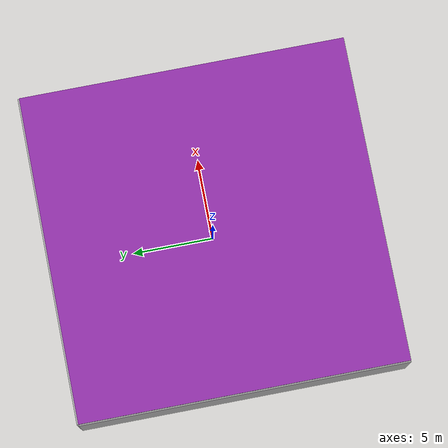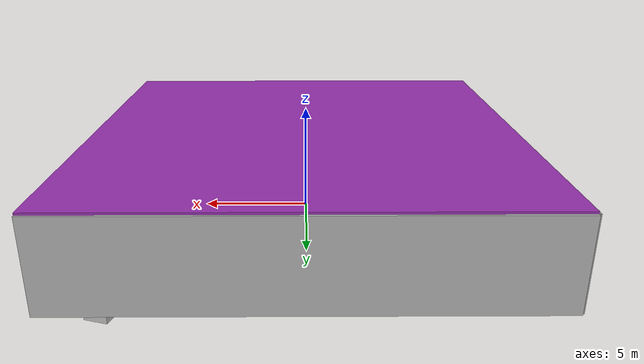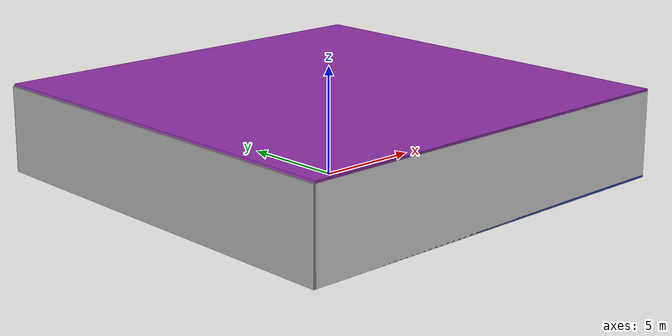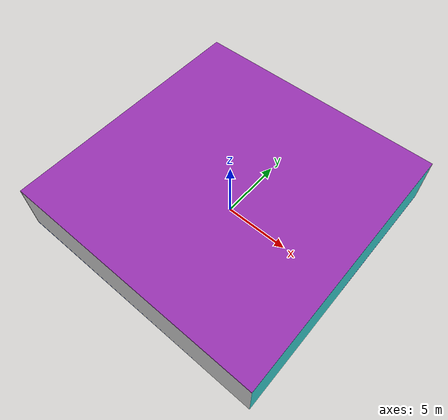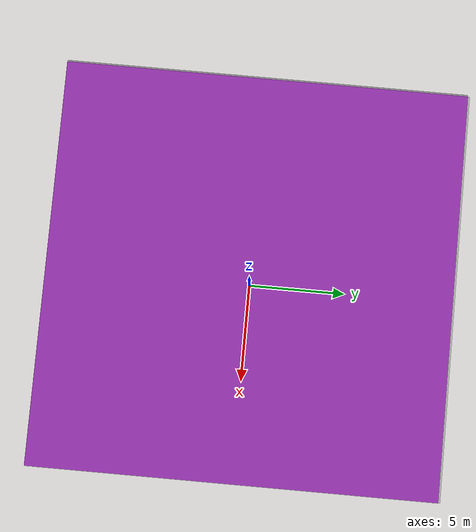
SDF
<sdf version="1.4">
 <world name="default">
  <physics type="ode">
   <max_step_size>0.001</max_step_size>
   <real_time_factor>1</real_time_factor>
   <real_time_update_rate>1000</real_time_update_rate>
   <gravity>0 0 -9.8</gravity>
  </physics>
  <scene><ambient>0.4 0.4 0.4 1</ambient><background>0.7 0.7 0.7 1</background><shadows>1</shadows></scene>
  <model name="Surrounding">
   <static>1</static>
   <link name="Ceiling">
    <collision name="Ceiling_Collision"><geometry><box><size>20 20 0.1</size></box></geometry></collision>
    <visual name="Ceiling_Visual">
     <geometry><box><size>20 20 0.1</size></box></geometry>
     <material>
      <script><uri>file://media/materials/scripts/gazebo.material</uri><name>Gazebo/Purple</name></script>
     </material>
    </visual>
    <pose>0 0 4.05 0 0 0</pose>
   </link>
   <link name="Wall_South">
    <collision name="Wall_South_Collision">
     <geometry><box><size>20 0 4</size></box></geometry>
     <pose>0 0 2 0 -0 0</pose>
    </collision>
    <visual name="Wall_South_Visual">
     <pose>0 0 2 0 -0 0</pose>
     <geometry><box><size>20 0 4</size></box></geometry>
     <material>
      <script><uri>file://media/materials/scripts/gazebo.material</uri><name>Gazebo/WhiteGlow</name></script>
     </material>
    </visual>
    <velocity_decay><linear>0</linear><angular>0</angular></velocity_decay>
    <pose>0 -10 0 0 -0 0</pose>
   </link>
   <link name="Wall_East">
    <collision name="Wall_21_Collision">
     <geometry><box><size>20 0 4</size></box></geometry>
     <pose>0 0 2 0 -0 0</pose>
    </collision>
    <visual name="Wall_21_Visual">
     <pose>0 0 2 0 -0 0</pose>
     <geometry><box><size>20 0 4</size></box></geometry>
     <material>
      <script><uri>file://media/materials/scripts/gazebo.material</uri><name>Gazebo/Turquoise</name></script>
     </material>
    </visual>
    <velocity_decay><linear>0</linear><angular>0</angular></velocity_decay>
    <pose>10 0 0 0 -0 1.5708</pose>
   </link>
   <link name="Wall_North">
    <collision name="Wall_22_Collision">
     <geometry><box><size>20 0.2 4</size></box></geometry>
     <pose>0 0 2 0 -0 0</pose>
    </collision>
    <visual name="Wall_22_Visual">
     <pose>0 0 2 0 -0 0</pose>
     <geometry><box><size>20 0.2 4</size></box></geometry>
     <material>
      <script><uri>file://media/materials/scripts/gazebo.material</uri><name>Gazebo/PioneerBody</name></script>
     </material>
    </visual>
    <velocity_decay><linear>0</linear><angular>0</angular></velocity_decay>
    <pose>0 10 0 0 -0 0</pose>
   </link>
   <link name="Wall_West">
    <collision name="Wall_23_Collision">
     <geometry><box><size>20 0.2 4</size></box></geometry>
     <pose>0 0 2 0 -0 0</pose>
    </collision>
    <visual name="Wall_23_Visual">
     <pose>0 0 2 0 -0 0</pose>
     <geometry><box><size>20 0.2 4</size></box></geometry>
     <material>
      <script><uri>file://media/materials/scripts/gazebo.material</uri><name>Gazebo/Grey</name></script>
     </material>
    </visual>
    <velocity_decay><linear>0</linear><angular>0</angular></velocity_decay>
    <pose>-10 0 0 0 0 -1.5708</pose>
   </link>
   <link name="Ground_link">
    <collision name="collision">
     <pose>0 0 .05 0 -0 0</pose>
     <geometry><box><size>20 20 0.1</size></box></geometry>
    </collision>
    <visual name="visual">
     <pose>0 0 .05 0 -0 0</pose>
     <geometry><box><size>20 20 0.1</size></box></geometry>
     <material>
      <script><uri>file://media/materials/scripts/gazebo.material</uri><name>Gazebo/BlueLaser</name></script>
     </material>
    </visual>
   </link>
   <static>1</static>
  </model>
  <spherical_coordinates>
   <surface_model>EARTH_WGS84</surface_model>
   <latitude_deg>0</latitude_deg>
   <longitude_deg>0</longitude_deg>
   <elevation>0</elevation>
   <heading_deg>0</heading_deg>
  </spherical_coordinates>
  <light name="lightball_0" type="diffuse">
   <diffuse>0.8 0.8 0.8 1</diffuse>
   <specular>0.2 0.2 0.2 1</specular>
   <attenuation>
    <range>100</range>
    <constant>0.7</constant>
    <linear>0.01</linear>
    <quadratic>0.001</quadratic>
   </attenuation>
   <direction>-0.5 0.1 -0.9</direction>
   <pose>-2.77243229301 -1.02579247995 0.975744923953 0 0 0</pose>
  </light>
  <light name="lightball_1" type="diffuse">
   <diffuse>0.8 0.8 0.8 1</diffuse>
   <specular>0.2 0.2 0.2 1</specular>
   <attenuation>
    <range>100</range>
    <constant>0.7</constant>
    <linear>0.01</linear>
    <quadratic>0.001</quadratic>
   </attenuation>
   <direction>-0.5 0.1 -0.9</direction>
   <pose>-9.69530013108 5.09019721103 2.01049826828 0 0 0</pose>
  </light>
  <light name="lightball_2" type="diffuse">
   <diffuse>0.8 0.8 0.8 1</diffuse>
   <specular>0.2 0.2 0.2 1</specular>
   <attenuation>
    <range>100</range>
    <constant>0.7</constant>
    <linear>0.01</linear>
    <quadratic>0.001</quadratic>
   </attenuation>
   <direction>-0.5 0.1 -0.9</direction>
   <pose>-2.62912378633 -5.13408868459 1.6506883271 0 0 0</pose>
  </light>
  <light name="lightball_3" type="diffuse">
   <diffuse>0.8 0.8 0.8 1</diffuse>
   <specular>0.2 0.2 0.2 1</specular>
   <attenuation>
    <range>100</range>
    <constant>0.7</constant>
    <linear>0.01</linear>
    <quadratic>0.001</quadratic>
   </attenuation>
   <direction>-0.5 0.1 -0.9</direction>
   <pose>-5.50340451144 0.151358975089 1.5090090312 0 0 0</pose>
  </light>
  <light name="lightball_4" type="diffuse">
   <diffuse>0.8 0.8 0.8 1</diffuse>
   <specular>0.2 0.2 0.2 1</specular>
   <attenuation>
    <range>100</range>
    <constant>0.7</constant>
    <linear>0.01</linear>
    <quadratic>0.001</quadratic>
   </attenuation>
   <direction>-0.5 0.1 -0.9</direction>
   <pose>0.0820852472815 0.256658726338 1.06807592629 0 0 0</pose>
  </light>
  <light name="lightball_5" type="diffuse">
   <diffuse>0.8 0.8 0.8 1</diffuse>
   <specular>0.2 0.2 0.2 1</specular>
   <attenuation>
    <range>100</range>
    <constant>0.7</constant>
    <linear>0.01</linear>
    <quadratic>0.001</quadratic>
   </attenuation>
   <direction>-0.5 0.1 -0.9</direction>
   <pose>7.743191252 -7.5688818099 1.31219526508 0 0 0</pose>
  </light>
  <light name="lightball_6" type="diffuse">
   <diffuse>0.8 0.8 0.8 1</diffuse>
   <specular>0.2 0.2 0.2 1</specular>
   <attenuation>
    <range>100</range>
    <constant>0.7</constant>
    <linear>0.01</linear>
    <quadratic>0.001</quadratic>
   </attenuation>
   <direction>-0.5 0.1 -0.9</direction>
   <pose>-0.337585647547 8.70883707714 3.8138280572 0 0 0</pose>
  </light>
  <light name="lightball_7" type="diffuse">
   <diffuse>0.8 0.8 0.8 1</diffuse>
   <specular>0.2 0.2 0.2 1</specular>
   <attenuation>
    <range>100</range>
    <constant>0.7</constant>
    <linear>0.01</linear>
    <quadratic>0.001</quadratic>
   </attenuation>
   <direction>-0.5 0.1 -0.9</direction>
   <pose>-0.516252214235 6.42136020182 0.689172446269 0 0 0</pose>
  </light>
  <include>
   <uri>model://textured_shapes</uri>
   <pose>-4.24850526718 1.10101482108 0 0 0 3.05719094673</pose>
  </include>
  <include><uri>model://cabinet</uri><pose>2.06529737157 -2.23367799588 0 0 0 0.812129334015</pose></include>
  <include>
   <uri>model://textured_shapes</uri>
   <pose>7.249433892 7.73848272496 0 0 0 2.84236322577</pose>
  </include>
 </world>
</sdf>

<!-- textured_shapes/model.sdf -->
<sdf version="1.6">
  <model name="textured_shapes">
    <pose>0 0 0.5 0 0 0</pose>
    <link name="box">
      <pose>0 -1.5 0 0 0 0</pose>
      <collision name="collision">
        <geometry>
          <box>
            <size>1 1 1</size>
          </box>
        </geometry>
      </collision>
      <visual name="visual">
        <geometry>
          <box>
            <size>1 1 1</size>
          </box>
        </geometry>
        <material>
          <script>
            <uri>model://../model_source/models/textured_shapes/materials/scripts</uri>
            <uri>model://../model_source/models/textured_shapes/materials/textures</uri>
            <name>TexturedShape/Squares</name>
          </script>
        </material>
      </visual>
    </link>
    <link name="sphere">
      <collision name="collision">
        <geometry>
          <sphere>
            <radius>0.5</radius>
          </sphere>
        </geometry>
      </collision>
      <visual name="visual">
        <geometry>
          <sphere>
            <radius>0.5</radius>
          </sphere>
        </geometry>
        <material>
          <script>
            <uri>model://../model_source/models/textured_shapes/materials/scripts</uri>
            <uri>model://../model_source/models/textured_shapes/materials/textures</uri>
            <name>TexturedShape/Squares</name>
          </script>
        </material>
      </visual>
    </link>
    <link name="cylinder">
      <pose>0 1.5 0 0 0 0</pose>
      <collision name="collision">
        <geometry>
          <cylinder>
            <radius>0.5</radius>
            <length>1</length>
          </cylinder>
        </geometry>
      </collision>
      <visual name="visual">
        <geometry>
          <cylinder>
            <radius>0.5</radius>
            <length>1</length>
          </cylinder>
        </geometry>
        <material>
          <script>
            <uri>model://../model_source/models/textured_shapes/materials/scripts</uri>
            <uri>model://../model_source/models/textured_shapes/materials/textures</uri>
            <name>TexturedShape/Squares</name>
          </script>
        </material>
      </visual>
    </link>
  </model>
</sdf>

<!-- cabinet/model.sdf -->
<sdf version="1.5">
  <model name="cabinet">
    <static>true</static>
    <link name="cabinet_bottom_plate">
      <inertial>
        <pose>0 0 -1 0 0 0</pose>
        <inertia>
          <ixx>2.050000</ixx>
          <ixy>0</ixy>
          <ixz>0</ixz>
          <iyy>2.050000</iyy>
          <iyz>0</iyz>
          <izz>2.050000</izz>
        </inertia>
        <mass>25.000000</mass>
      </inertial>
      <collision name="cabinet_bottom_plate_geom">
        <pose>0 0 0.010000 0 0 0</pose>
        <geometry>
          <box>
            <size>0.450000 0.450000 0.020000</size>
          </box>
        </geometry>
      </collision>
      <visual name="cabinet_bottom_plate_geom_visual">
        <pose>0 0 0.010000 0 0 0</pose>
        <geometry>
          <box>
            <size>0.450000 0.450000 0.020000</size>
          </box>
        </geometry>
        <material>
          <script>
            <uri>model://media/materials/scripts/gazebo.material</uri>
            <name>Gazebo/Wood</name>
          </script>
        </material>
      </visual>
      <collision name="cabinet_bottom_plate_geom_cabinet_back_plate">
        <pose>0.235000 0 0.510000 0 0 0</pose>
        <geometry>
          <box>
            <size>0.020000 0.450000 1.020000</size>
          </box>
        </geometry>
      </collision>
      <visual name="cabinet_bottom_plate_geom_cabinet_back_plate_visual">
        <pose>0.235000 0 0.510000 0 0 0</pose>
        <geometry>
          <box>
            <size>0.020000 0.450000 1.020000</size>
          </box>
        </geometry>
        <material>
          <script>
            <uri>model://media/materials/scripts/gazebo.material</uri>
            <name>Gazebo/Wood</name>
          </script>
        </material>
      </visual>
      <collision name="cabinet_bottom_plate_geom_cabinet_left_plate">
        <pose>0 0.235000 0.510000 0 0 0</pose>
        <geometry>
          <box>
            <size>0.450000 0.020000 1.020000</size>
          </box>
        </geometry>
      </collision>
      <visual name="cabinet_bottom_plate_geom_cabinet_left_plate_visual">
        <pose>0 0.235000 0.510000 0 0 0</pose>
        <geometry>
          <box>
            <size>0.450000 0.020000 1.020000</size>
          </box>
        </geometry>
        <material>
          <script>
            <uri>model://media/materials/scripts/gazebo.material</uri>
            <name>Gazebo/Wood</name>
          </script>
        </material>
      </visual>
      <collision name="cabinet_bottom_plate_geom_cabinet_middle_plate">
        <pose>0 0 0.510000 0 0 0</pose>
        <geometry>
          <box>
            <size>0.450000 0.450000 0.020000</size>
          </box>
        </geometry>
      </collision>
      <visual name="cabinet_bottom_plate_geom_cabinet_middle_plate_visual">
        <pose>0 0 0.510000 0 0 0</pose>
        <geometry>
          <box>
            <size>0.450000 0.450000 0.020000</size>
          </box>
        </geometry>
        <material>
          <script>
            <uri>model://media/materials/scripts/gazebo.material</uri>
            <name>Gazebo/Wood</name>
          </script>
        </material>
      </visual>
      <collision name="cabinet_bottom_plate_geom_cabinet_right_plate">
        <pose>0 -0.235000 0.510000 0 0 0</pose>
        <geometry>
          <box>
            <size>0.450000 0.020000 1.020000</size>
          </box>
        </geometry>
      </collision>
      <visual name="cabinet_bottom_plate_geom_cabinet_right_plate_visual">
        <pose>0 -0.235000 0.510000 0 0 0</pose>
        <geometry>
          <box>
            <size>0.450000 0.020000 1.020000</size>
          </box>
        </geometry>
        <material>
          <script>
            <uri>model://media/materials/scripts/gazebo.material</uri>
            <name>Gazebo/Wood</name>
          </script>
        </material>
      </visual>
      <collision name="cabinet_bottom_plate_geom_cabinet_top_plate">
        <pose>0 0 1.010000 0 0 0</pose>
        <geometry>
          <box>
            <size>0.450000 0.450000 0.020000</size>
          </box>
        </geometry>
      </collision>
      <visual name="cabinet_bottom_plate_geom_cabinet_top_plate_visual">
        <pose>0 0 1.010000 0 0 0</pose>
        <geometry>
          <box>
            <size>0.450000 0.450000 0.020000</size>
          </box>
        </geometry>
        <material>
          <script>
            <uri>model://media/materials/scripts/gazebo.material</uri>
            <name>Gazebo/Wood</name>
          </script>
        </material>
      </visual>
    </link>
  </model>
</sdf>
